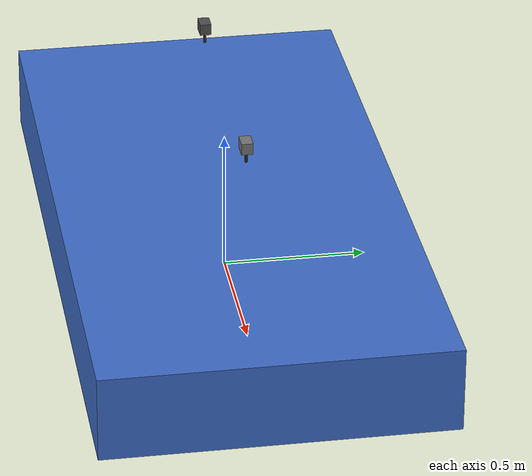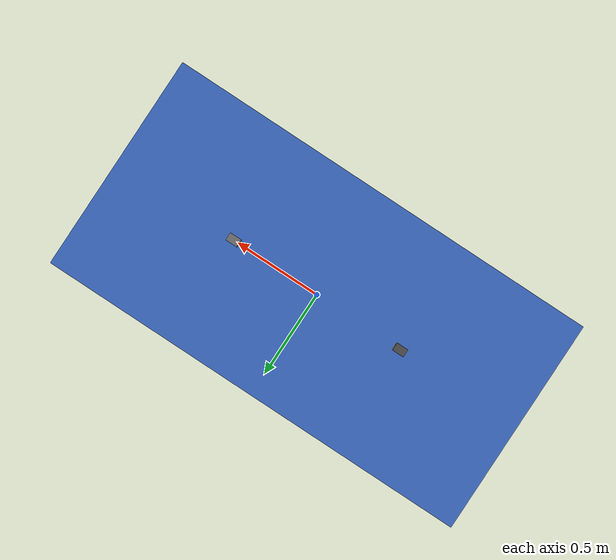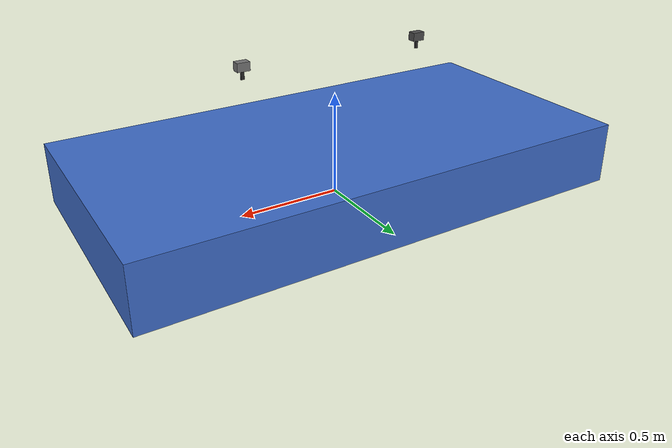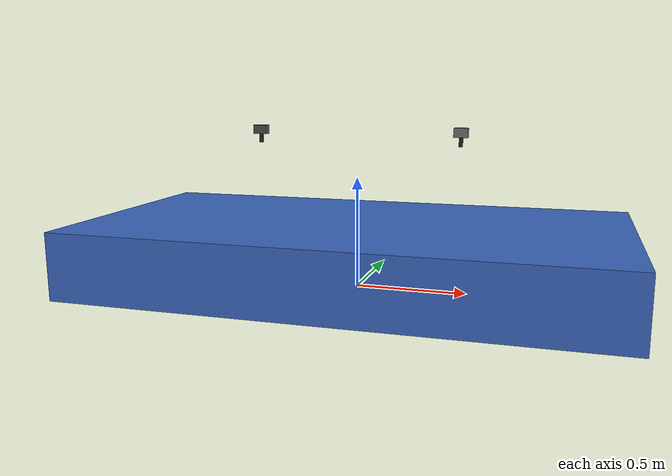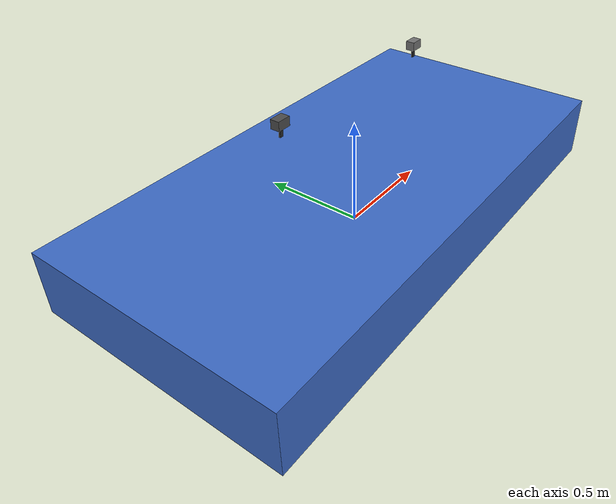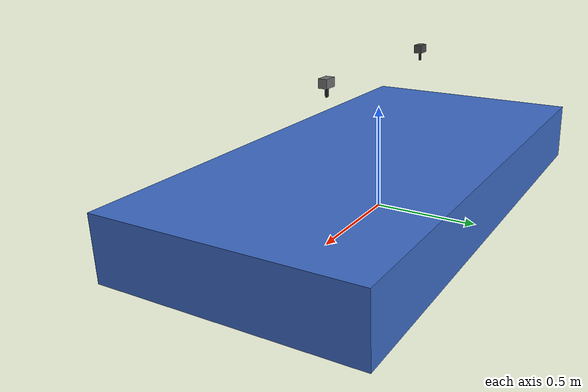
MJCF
<mujoco model="dual_gripper_cross">
  <!-- 由 scripts/gen_dual_gripper_cross_scene.py 生成；v4 Y-up → MjcPbdCoordinateTransform Z-up -->
  <compiler angle="degree" autolimits="true"/>
  <option timestep="0.001" gravity="0 0 -9.81" integrator="implicitfast" solver="CG"
          cone="elliptic" impratio="12" tolerance="1e-7" iterations="200" noslip_iterations="2"/>
  <default>
    <joint damping="0.30" armature="0.001"/>
    <geom solref="0.025 1.2" solimp="0.94 0.997 0.0008" condim="3" friction="0.45 0.02 0.005"/>
    <default class="finger_geom">
      <geom condim="4" friction="1.2 0.05 0.01" rgba="0.15 0.15 0.15 1"/>
    </default>
  </default>

  <visual>
    <headlight diffuse="0.8 0.8 0.8" ambient="0.2 0.2 0.2" specular="0.25 0.25 0.25"/>
    <rgba haze="0.15 0.25 0.35 1"/>
  </visual>

  <worldbody>
    <light pos="0.5 -0.5 1.5" dir="-0.3 0.3 -1"/>
    <camera name="main" pos="1.1 -0.9 0.55" xyaxes="0.75 0.66 0 -0.28 0.32 0.90"/>

    <body mocap="true" name="mocap_gripper_l_palm" pos="-0.460000 -0.000000 0.710000" quat="1 0 0 0"/>
    <body mocap="true" name="mocap_gripper_r_palm" pos="0.460000 -0.000000 0.710000" quat="1 0 0 0"/>

    <body name="base" pos="0.000000 -0.000000 0.150000">
      <geom name="base_geom" type="box" size="1.200000 0.600000 0.150000" rgba="0.24 0.42 0.78 1"/>
      <site name="base_anchor_0" pos="0.779423 0.779423 0.779423" size="0.004" rgba="1 1 1 0.01" group="4"/>
      <site name="base_anchor_1" pos="0.779423 -0.779423 -0.779423" size="0.004" rgba="1 1 1 0.01" group="4"/>
      <site name="base_anchor_2" pos="-0.779423 0.779423 -0.779423" size="0.004" rgba="1 1 1 0.01" group="4"/>
      <site name="base_anchor_3" pos="-0.779423 -0.779423 0.779423" size="0.004" rgba="1 1 1 0.01" group="4"/>
    </body>

    <body name="gripper_l_palm" pos="-0.460000 -0.000000 0.710000">
      <freejoint name="gripper_l_palm_free"/>
      <geom name="gripper_l_palm_geom" type="box" size="0.030000 0.020000 0.020000" mass="0.001"
            rgba="0.30 0.30 0.30 1" friction="1.0 0.04 0.01"/>
      <site name="gripper_l_palm_anchor_0" pos="0.023805 0.023805 0.023805" size="0.004" rgba="1 1 1 0.01" group="4"/>
      <site name="gripper_l_palm_anchor_1" pos="0.023805 -0.023805 -0.023805" size="0.004" rgba="1 1 1 0.01" group="4"/>
      <site name="gripper_l_palm_anchor_2" pos="-0.023805 0.023805 -0.023805" size="0.004" rgba="1 1 1 0.01" group="4"/>
      <site name="gripper_l_palm_anchor_3" pos="-0.023805 -0.023805 0.023805" size="0.004" rgba="1 1 1 0.01" group="4"/>
      <body name="gripper_l_finger1" pos="0.000000 -0.000000 -0.020000">
        <joint name="gripper_l_finger1_hinge" type="hinge" axis="1 0 0" range="-60 -2" ref="54"/>
        <geom name="gripper_l_finger1_geom" class="finger_geom" type="box" size="0.008000 0.004000 0.020000" pos="0.000000 -0.000000 -0.020000" mass="0.05"/>
      <site name="gripper_l_finger1_anchor_0" pos="0.012649 0.012649 0.012649" size="0.004" rgba="1 1 1 0.01" group="4"/>
      <site name="gripper_l_finger1_anchor_1" pos="0.012649 -0.012649 -0.012649" size="0.004" rgba="1 1 1 0.01" group="4"/>
      <site name="gripper_l_finger1_anchor_2" pos="-0.012649 0.012649 -0.012649" size="0.004" rgba="1 1 1 0.01" group="4"/>
      <site name="gripper_l_finger1_anchor_3" pos="-0.012649 -0.012649 0.012649" size="0.004" rgba="1 1 1 0.01" group="4"/>
      </body>
      <body name="gripper_l_finger2" pos="0.000000 -0.000000 -0.020000">
        <joint name="gripper_l_finger2_hinge" type="hinge" axis="1 0 0" range="2 60" ref="-54"/>
        <geom name="gripper_l_finger2_geom" class="finger_geom" type="box" size="0.008000 0.004000 0.020000" pos="0.000000 -0.000000 -0.020000" mass="0.05"/>
      <site name="gripper_l_finger2_anchor_0" pos="0.012649 0.012649 0.012649" size="0.004" rgba="1 1 1 0.01" group="4"/>
      <site name="gripper_l_finger2_anchor_1" pos="0.012649 -0.012649 -0.012649" size="0.004" rgba="1 1 1 0.01" group="4"/>
      <site name="gripper_l_finger2_anchor_2" pos="-0.012649 0.012649 -0.012649" size="0.004" rgba="1 1 1 0.01" group="4"/>
      <site name="gripper_l_finger2_anchor_3" pos="-0.012649 -0.012649 0.012649" size="0.004" rgba="1 1 1 0.01" group="4"/>
      </body>
    </body>

    <body name="gripper_r_palm" pos="0.460000 -0.000000 0.710000">
      <freejoint name="gripper_r_palm_free"/>
      <geom name="gripper_r_palm_geom" type="box" size="0.030000 0.020000 0.020000" mass="0.001"
            rgba="0.45 0.45 0.45 1" friction="1.0 0.04 0.01"/>
      <site name="gripper_r_palm_anchor_0" pos="0.023805 0.023805 0.023805" size="0.004" rgba="1 1 1 0.01" group="4"/>
      <site name="gripper_r_palm_anchor_1" pos="0.023805 -0.023805 -0.023805" size="0.004" rgba="1 1 1 0.01" group="4"/>
      <site name="gripper_r_palm_anchor_2" pos="-0.023805 0.023805 -0.023805" size="0.004" rgba="1 1 1 0.01" group="4"/>
      <site name="gripper_r_palm_anchor_3" pos="-0.023805 -0.023805 0.023805" size="0.004" rgba="1 1 1 0.01" group="4"/>
      <body name="gripper_r_finger1" pos="0.000000 -0.000000 -0.020000">
        <joint name="gripper_r_finger1_hinge" type="hinge" axis="1 0 0" range="-60 -2" ref="54"/>
        <geom name="gripper_r_finger1_geom" class="finger_geom" type="box" size="0.008000 0.004000 0.020000" pos="0.000000 -0.000000 -0.020000" mass="0.05"/>
      <site name="gripper_r_finger1_anchor_0" pos="0.012649 0.012649 0.012649" size="0.004" rgba="1 1 1 0.01" group="4"/>
      <site name="gripper_r_finger1_anchor_1" pos="0.012649 -0.012649 -0.012649" size="0.004" rgba="1 1 1 0.01" group="4"/>
      <site name="gripper_r_finger1_anchor_2" pos="-0.012649 0.012649 -0.012649" size="0.004" rgba="1 1 1 0.01" group="4"/>
      <site name="gripper_r_finger1_anchor_3" pos="-0.012649 -0.012649 0.012649" size="0.004" rgba="1 1 1 0.01" group="4"/>
      </body>
      <body name="gripper_r_finger2" pos="0.000000 -0.000000 -0.020000">
        <joint name="gripper_r_finger2_hinge" type="hinge" axis="1 0 0" range="2 60" ref="-54"/>
        <geom name="gripper_r_finger2_geom" class="finger_geom" type="box" size="0.008000 0.004000 0.020000" pos="0.000000 -0.000000 -0.020000" mass="0.05"/>
      <site name="gripper_r_finger2_anchor_0" pos="0.012649 0.012649 0.012649" size="0.004" rgba="1 1 1 0.01" group="4"/>
      <site name="gripper_r_finger2_anchor_1" pos="0.012649 -0.012649 -0.012649" size="0.004" rgba="1 1 1 0.01" group="4"/>
      <site name="gripper_r_finger2_anchor_2" pos="-0.012649 0.012649 -0.012649" size="0.004" rgba="1 1 1 0.01" group="4"/>
      <site name="gripper_r_finger2_anchor_3" pos="-0.012649 -0.012649 0.012649" size="0.004" rgba="1 1 1 0.01" group="4"/>
      </body>
    </body>
  </worldbody>

  <equality>
    <weld name="weld_l_palm_mocap" body1="mocap_gripper_l_palm" body2="gripper_l_palm"
          solref="0.02 1" solimp="0.9 0.95 0.001"/>
    <weld name="weld_r_palm_mocap" body1="mocap_gripper_r_palm" body2="gripper_r_palm"
          solref="0.02 1" solimp="0.9 0.95 0.001"/>
  </equality>

  <actuator>
    <position name="gripper_l_finger1_ctrl" joint="gripper_l_finger1_hinge" kp="120" kv="8"
              ctrlrange="-60 -2" forcelimited="true" forcerange="-30 30"/>
    <position name="gripper_l_finger2_ctrl" joint="gripper_l_finger2_hinge" kp="120" kv="8"
              ctrlrange="2 60" forcelimited="true" forcerange="-30 30"/>
    <position name="gripper_r_finger1_ctrl" joint="gripper_r_finger1_hinge" kp="120" kv="8"
              ctrlrange="-60 -2" forcelimited="true" forcerange="-30 30"/>
    <position name="gripper_r_finger2_ctrl" joint="gripper_r_finger2_hinge" kp="120" kv="8"
              ctrlrange="2 60" forcelimited="true" forcerange="-30 30"/>
  </actuator>
</mujoco>
